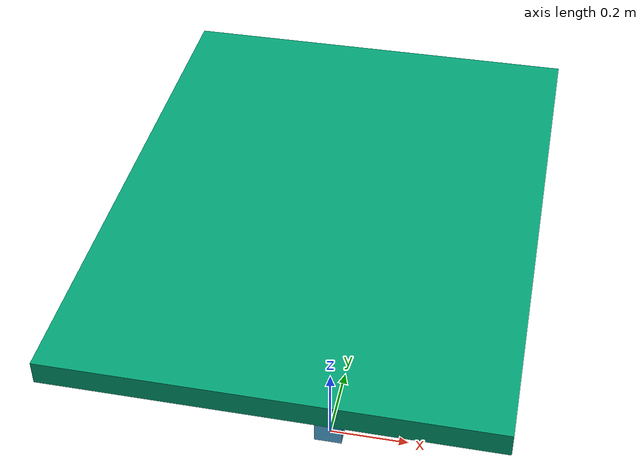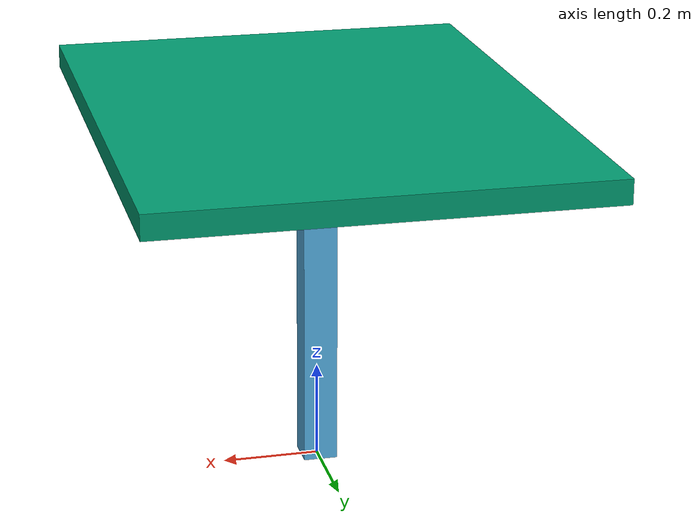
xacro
<?xml version = "1.0"?>
<robot name="table_mini_wide">
  <link name="table_base_link" />
  <link name="column">
    <visual>
       <geometry>
	   <box size="0.07 0.07 0.74"/>
	</geometry>
    </visual>
    <collision>
       <geometry>
	   <box size="0.07 0.07 0.74"/>
	</geometry>
    </collision>
    <inertial>
    	<mass value="1.5"/>
      <inertia ixx="1.0" ixy="0" ixz="0" iyy="1.0" iyz="0" izz="1.0"/>
    </inertial>
  </link>
  <gazebo reference="column">
      <dampingFactor>0.005</dampingFactor>
      <kp>1000000</kp>
      <kd>1.0</kd>
      <mu1>1.0</mu1>
      <mu2>1.0</mu2>
  </gazebo>

  <joint name="joint1" type="fixed">
    <parent link="table_base_link"/>
    <child link="column"/>
    <origin xyz ="0 0 0.37" rpy= "0 0 0"/>
  </joint>

  <link name="surface">
    <visual>
       <geometry>
	   <box size="0.9 1.2 0.05"/>
	</geometry>
    </visual>
    <collision>
       <geometry>
	   <box size="0.9 1.2 0.05"/>
	</geometry>
    </collision>
    <inertial>
    	<mass value="1"/>
      <inertia ixx="1.0" ixy="0" ixz="0" iyy="1.0" iyz="0" izz="1.0"/>
    </inertial>
  </link>
  <gazebo reference="surface">
      <dampingFactor>0.005</dampingFactor>
      <kp>1000000</kp>
      <kd>1.0</kd>
      <mu1>1</mu1>
      <mu2>1</mu2>
  </gazebo>

  <joint name="joint2" type="fixed">
    <parent link="column"/>
    <child link="surface"/>
    <origin xyz ="0 0 0.37" rpy= "0 0 0"/> <!--z axis: {height}/2 -->
  </joint>

</robot>
